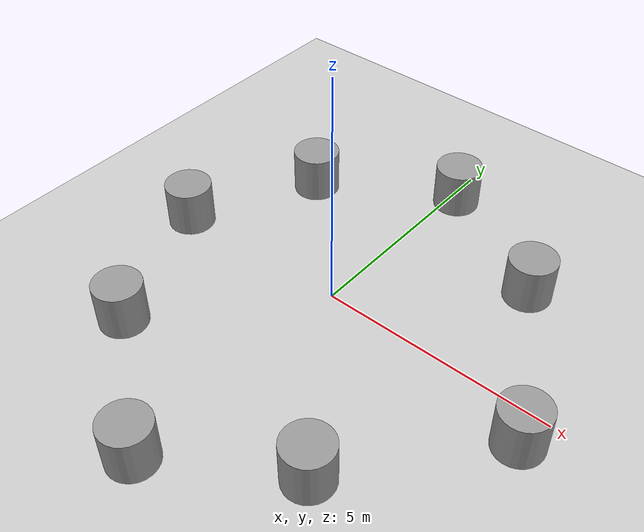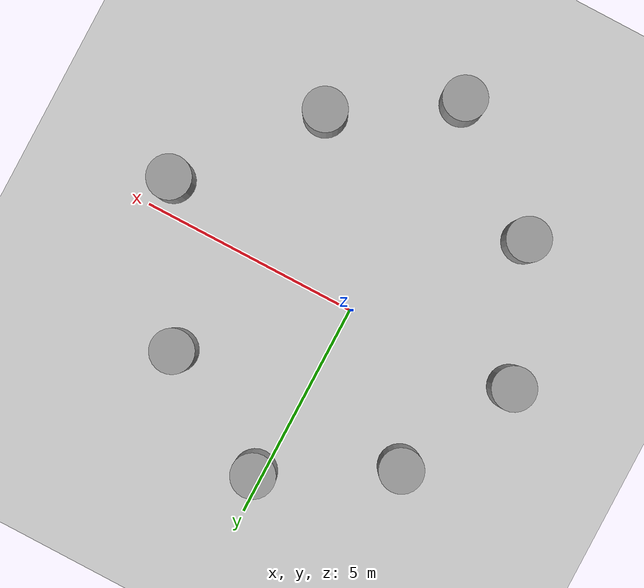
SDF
<sdf version="1.6">
 <world name="default">
  <light name="sun" type="directional">
   <pose>0 0 10 0 -0 0</pose>
   <diffuse>0.8 0.8 0.8 1</diffuse>
   <specular>0.2 0.2 0.2 1</specular>
   <attenuation>
    <range>1000</range>
    <constant>0.9</constant>
    <linear>0.01</linear>
    <quadratic>0.001</quadratic>
   </attenuation>
   <direction>-0.5 0.1 -0.9</direction>
  </light>
  <model name="ground_plane">
   <static>1</static>
   <link name="link">
    <collision name="collision">
     <geometry><plane><normal>0 0 1</normal><size>100 100</size></plane></geometry>
     <surface><friction><ode><mu>100</mu><mu2>50</mu2></ode></friction></surface>
    </collision>
    <visual name="visual">
     <cast_shadows>0</cast_shadows>
     <geometry><plane><normal>0 0 1</normal><size>100 100</size></plane></geometry>
     <material>
      <script><uri>file://media/materials/scripts/gazebo.material</uri><name>Gazebo/Grey</name></script>
     </material>
    </visual>
   </link>
  </model>
  <gravity>0 0 -9.8</gravity>
  <magnetic_field>6e-06 2.3e-05 -4.2e-05</magnetic_field>
  <atmosphere type="adiabatic"/>
  <physics name="default_physics" default="0" type="ode">
   <max_step_size>0.001</max_step_size>
   <real_time_factor>1</real_time_factor>
   <real_time_update_rate>1000</real_time_update_rate>
  </physics>
  <scene><ambient>0.4 0.4 0.4 1</ambient><background>0.7 0.7 0.7 1</background><shadows>1</shadows></scene>
  <spherical_coordinates>
   <surface_model>EARTH_WGS84</surface_model>
   <latitude_deg>0</latitude_deg>
   <longitude_deg>0</longitude_deg>
   <elevation>0</elevation>
   <heading_deg>0</heading_deg>
  </spherical_coordinates>
  <model name="unit_cylinder">
   <pose>4.75872 -0.701587 0.5 0 -0 0</pose>
   <link name="link">
    <inertial>
     <mass>1</mass>
     <inertia><ixx>0.145833</ixx><ixy>0</ixy><ixz>0</ixz><iyy>0.145833</iyy><iyz>0</iyz><izz>0.125</izz></inertia>
    </inertial>
    <collision name="collision">
     <geometry><cylinder><radius>0.5</radius><length>1</length></cylinder></geometry>
    </collision>
    <visual name="visual">
     <geometry><cylinder><radius>0.5</radius><length>1</length></cylinder></geometry>
     <material>
      <script><name>Gazebo/Grey</name><uri>file://media/materials/scripts/gazebo.material</uri></script>
     </material>
    </visual>
   </link>
  </model>
  <model name="unit_cylinder_0">
   <pose>-0.046221 -5.14995 0.5 0 -0 0</pose>
   <link name="link">
    <inertial>
     <mass>1</mass>
     <inertia><ixx>0.145833</ixx><ixy>0</ixy><ixz>0</ixz><iyy>0.145833</iyy><iyz>0</iyz><izz>0.125</izz></inertia>
    </inertial>
    <collision name="collision">
     <geometry><cylinder><radius>0.5</radius><length>1</length></cylinder></geometry>
    </collision>
    <visual name="visual">
     <geometry><cylinder><radius>0.5</radius><length>1</length></cylinder></geometry>
     <material>
      <script><name>Gazebo/Grey</name><uri>file://media/materials/scripts/gazebo.material</uri></script>
     </material>
    </visual>
   </link>
  </model>
  <model name="unit_cylinder_1">
   <pose>0.185651 4.09861 0.5 0 -0 0</pose>
   <link name="link">
    <inertial>
     <mass>1</mass>
     <inertia><ixx>0.145833</ixx><ixy>0</ixy><ixz>0</ixz><iyy>0.145833</iyy><iyz>0</iyz><izz>0.125</izz></inertia>
    </inertial>
    <collision name="collision">
     <geometry><cylinder><radius>0.5</radius><length>1</length></cylinder></geometry>
    </collision>
    <visual name="visual">
     <geometry><cylinder><radius>0.5</radius><length>1</length></cylinder></geometry>
     <material>
      <script><name>Gazebo/Grey</name><uri>file://media/materials/scripts/gazebo.material</uri></script>
     </material>
    </visual>
   </link>
  </model>
  <model name="unit_cylinder_2">
   <pose>-3.87528 -0.157965 0.5 0 -0 0</pose>
   <link name="link">
    <inertial>
     <mass>1</mass>
     <inertia><ixx>0.145833</ixx><ixy>0</ixy><ixz>0</ixz><iyy>0.145833</iyy><iyz>0</iyz><izz>0.125</izz></inertia>
    </inertial>
    <collision name="collision">
     <geometry><cylinder><radius>0.5</radius><length>1</length></cylinder></geometry>
    </collision>
    <visual name="visual">
     <geometry><cylinder><radius>0.5</radius><length>1</length></cylinder></geometry>
     <material>
      <script><name>Gazebo/Grey</name><uri>file://media/materials/scripts/gazebo.material</uri></script>
     </material>
    </visual>
   </link>
  </model>
  <model name="unit_cylinder_1_clone">
   <pose>2.96024 2.55508 0.5 0 -0 0</pose>
   <link name="link">
    <inertial>
     <mass>1</mass>
     <inertia><ixx>0.145833</ixx><ixy>0</ixy><ixz>0</ixz><iyy>0.145833</iyy><iyz>0</iyz><izz>0.125</izz></inertia>
    </inertial>
    <collision name="collision">
     <geometry><cylinder><radius>0.5</radius><length>1</length></cylinder></geometry>
    </collision>
    <visual name="visual">
     <geometry><cylinder><radius>0.5</radius><length>1</length></cylinder></geometry>
     <material>
      <script><name>Gazebo/Grey</name><uri>file://media/materials/scripts/gazebo.material</uri></script>
     </material>
    </visual>
   </link>
  </model>
  <model name="unit_cylinder_1_clone_0">
   <pose>2.48513 -3.53716 0.5 0 -0 0</pose>
   <link name="link">
    <inertial>
     <mass>1</mass>
     <inertia><ixx>0.145833</ixx><ixy>0</ixy><ixz>0</ixz><iyy>0.145833</iyy><iyz>0</iyz><izz>0.125</izz></inertia>
    </inertial>
    <collision name="collision">
     <geometry><cylinder><radius>0.5</radius><length>1</length></cylinder></geometry>
    </collision>
    <visual name="visual">
     <geometry><cylinder><radius>0.5</radius><length>1</length></cylinder></geometry>
     <material>
      <script><name>Gazebo/Grey</name><uri>file://media/materials/scripts/gazebo.material</uri></script>
     </material>
    </visual>
   </link>
  </model>
  <model name="unit_cylinder_1_clone_1">
   <pose>-2.56731 2.51415 0.5 0 -0 0</pose>
   <link name="link">
    <inertial>
     <mass>1</mass>
     <inertia><ixx>0.145833</ixx><ixy>0</ixy><ixz>0</ixz><iyy>0.145833</iyy><iyz>0</iyz><izz>0.125</izz></inertia>
    </inertial>
    <collision name="collision">
     <geometry><cylinder><radius>0.5</radius><length>1</length></cylinder></geometry>
    </collision>
    <visual name="visual">
     <geometry><cylinder><radius>0.5</radius><length>1</length></cylinder></geometry>
     <material>
      <script><name>Gazebo/Grey</name><uri>file://media/materials/scripts/gazebo.material</uri></script>
     </material>
    </visual>
   </link>
  </model>
  <model name="unit_cylinder_1_clone_2">
   <pose>-2.65837 -3.12493 0.5 0 -0 0</pose>
   <link name="link">
    <inertial>
     <mass>1</mass>
     <inertia><ixx>0.145833</ixx><ixy>0</ixy><ixz>0</ixz><iyy>0.145833</iyy><iyz>0</iyz><izz>0.125</izz></inertia>
    </inertial>
    <collision name="collision">
     <geometry><cylinder><radius>0.5</radius><length>1</length></cylinder></geometry>
    </collision>
    <visual name="visual">
     <geometry><cylinder><radius>0.5</radius><length>1</length></cylinder></geometry>
     <material>
      <script><name>Gazebo/Grey</name><uri>file://media/materials/scripts/gazebo.material</uri></script>
     </material>
    </visual>
   </link>
  </model>
 </world>
</sdf>
